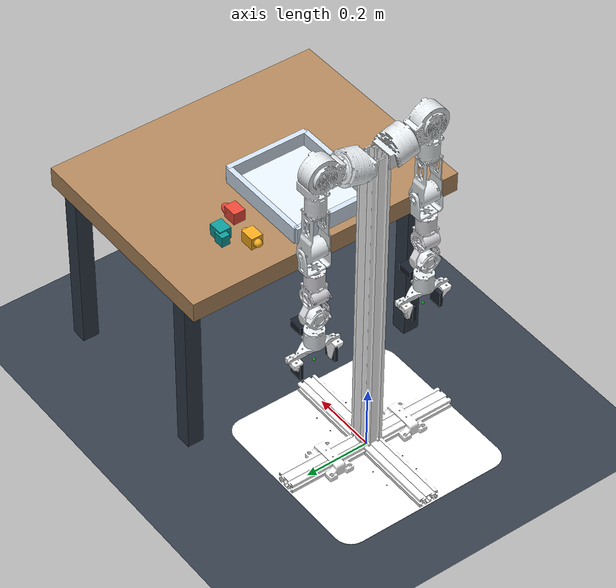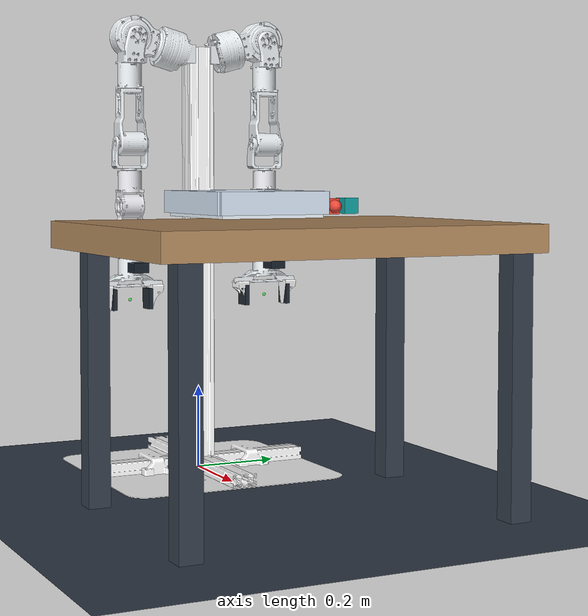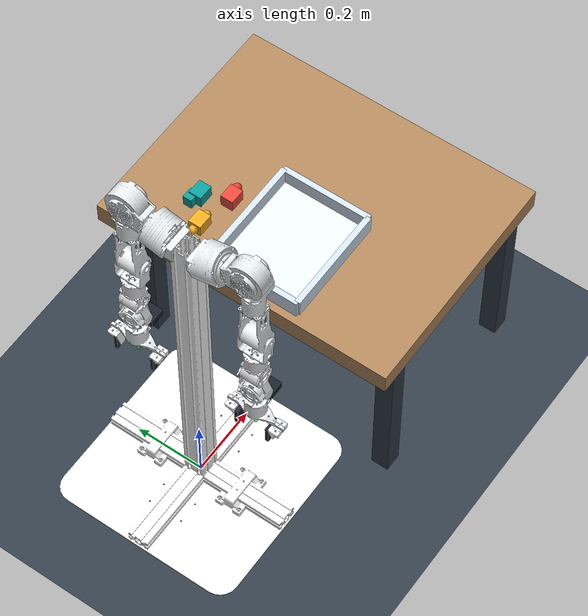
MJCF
<mujoco model="yunyi_v1_0">
  <compiler angle="radian" />
  <asset>
    <mesh name="base_link" content_type="model/stl" file="/home/ubuntu/gpt-jev/assets/robot/meshes/bessica_M1.3/base_link.STL" />
    <mesh name="l_base_link" content_type="model/stl" file="/home/ubuntu/gpt-jev/assets/robot/meshes/bessica_M1.3/l_base_link.STL" />
    <mesh name="l_link1" content_type="model/stl" file="/home/ubuntu/gpt-jev/assets/robot/meshes/bessica_M1.3/l_link1.STL" />
    <mesh name="l_link2" content_type="model/stl" file="/home/ubuntu/gpt-jev/assets/robot/meshes/bessica_M1.3/l_link2.STL" />
    <mesh name="l_link3" content_type="model/stl" file="/home/ubuntu/gpt-jev/assets/robot/meshes/bessica_M1.3/l_link3.STL" />
    <mesh name="l_link4" content_type="model/stl" file="/home/ubuntu/gpt-jev/assets/robot/meshes/bessica_M1.3/l_link4.STL" />
    <mesh name="l_link5" content_type="model/stl" file="/home/ubuntu/gpt-jev/assets/robot/meshes/bessica_M1.3/l_link5.STL" />
    <mesh name="l_link6" content_type="model/stl" file="/home/ubuntu/gpt-jev/assets/robot/meshes/bessica_M1.3/l_link6.STL" />
    <mesh name="l_link7" content_type="model/stl" file="/home/ubuntu/gpt-jev/assets/robot/meshes/bessica_M1.3/l_link7.STL" />
    <mesh name="l_tool_link1" content_type="model/stl" file="/home/ubuntu/gpt-jev/assets/robot/meshes/bessica_M1.3/l_tool_link1.STL" />
    <mesh name="l_tool_link2" content_type="model/stl" file="/home/ubuntu/gpt-jev/assets/robot/meshes/bessica_M1.3/l_tool_link2.STL" />
    <mesh name="r_base_link" content_type="model/stl" file="/home/ubuntu/gpt-jev/assets/robot/meshes/bessica_M1.3/r_base_link.STL" />
    <mesh name="r_link1" content_type="model/stl" file="/home/ubuntu/gpt-jev/assets/robot/meshes/bessica_M1.3/r_link1.STL" />
    <mesh name="r_link2" content_type="model/stl" file="/home/ubuntu/gpt-jev/assets/robot/meshes/bessica_M1.3/r_link2.STL" />
    <mesh name="r_link3" content_type="model/stl" file="/home/ubuntu/gpt-jev/assets/robot/meshes/bessica_M1.3/r_link3.STL" />
    <mesh name="r_link4" content_type="model/stl" file="/home/ubuntu/gpt-jev/assets/robot/meshes/bessica_M1.3/r_link4.STL" />
    <mesh name="r_link5" content_type="model/stl" file="/home/ubuntu/gpt-jev/assets/robot/meshes/bessica_M1.3/r_link5.STL" />
    <mesh name="r_link6" content_type="model/stl" file="/home/ubuntu/gpt-jev/assets/robot/meshes/bessica_M1.3/r_link6.STL" />
    <mesh name="r_link7" content_type="model/stl" file="/home/ubuntu/gpt-jev/assets/robot/meshes/bessica_M1.3/r_link7.STL" />
    <mesh name="r_tool_link1" content_type="model/stl" file="/home/ubuntu/gpt-jev/assets/robot/meshes/bessica_M1.3/r_tool_link1.STL" />
    <mesh name="r_tool_link2" content_type="model/stl" file="/home/ubuntu/gpt-jev/assets/robot/meshes/bessica_M1.3/r_tool_link2.STL" />
    <texture name="floor_tex" type="2d" builtin="checker" rgb1="0.18 0.22 0.27" rgb2="0.22 0.26 0.31" width="256" height="256" />
    <material name="floor_mat" texture="floor_tex" texrepeat="3 3" reflectance="0.1" />
  </asset>
  <worldbody>
    <body name="base_link">
      <inertial pos="0.000999999 -1.8355e-09 0.146364" mass="3.56107" diaginertia="0.133997 0.127853 0.0999783" />
      <geom type="mesh" contype="0" conaffinity="0" group="1" rgba="1 1 1 1" density="0" mesh="base_link" />
      <geom type="mesh" rgba="1 1 1 1" mesh="base_link" group="3" />
      <body name="l-base-link" pos="0.00105 0.0446731 1.01543" gravcomp="1">
        <inertial pos="-1.95622e-05 0.0255463 0.0061601" quat="0.560947 0.430489 0.560895 0.430598" mass="0.646746" diaginertia="0.000704038 0.000436175 0.000402983" />
        <geom type="mesh" contype="0" conaffinity="0" group="1" rgba="0.898039 0.917647 0.929412 1" density="0" mesh="l_base_link" />
        <geom type="mesh" rgba="0.898039 0.917647 0.929412 1" mesh="l_base_link" group="3" />
        <body name="l-link1" pos="0 0.059598 0.015969" gravcomp="1">
          <inertial pos="0.0022336 0.054301 0.0145263" quat="0.999444 -0.0333524 -0.000444295 0.000268664" mass="0.486098" diaginertia="0.000518892 0.000343244 0.000319394" />
          <joint name="l-joint1" range="-2.745 2.745" actuatorfrcrange="-40 40" axis="0 0.965926 0.258819" damping="4" armature=".04" />
          <geom type="mesh" contype="0" conaffinity="0" group="1" rgba="0.898039 0.917647 0.929412 1" density="0" mesh="l_link1" />
          <geom type="mesh" rgba="0.898039 0.917647 0.929412 1" mesh="l_link1" group="3" />
          <body name="l-link2" pos="-5e-05 0.06549 0.017548" gravcomp="1">
            <inertial pos="0.011293 0.00810561 -0.0751612" quat="0.632811 0.773794 0.000930292 0.0281703" mass="0.607836" diaginertia="0.000263322 0.000256792 0.000239564" />
            <joint name="l-joint2" range="-0.3489 2.2678" actuatorfrcrange="-40 40" axis="1 0 0" damping="4" armature=".04" />
            <geom type="mesh" contype="0" conaffinity="0" group="1" rgba="0.898039 0.917647 0.929412 1" density="0" mesh="l_link2" />
            <geom type="mesh" rgba="0.898039 0.917647 0.929412 1" mesh="l_link2" group="3" />
            <body name="l-link3" pos="0.0043414 0.008 -0.1195" gravcomp="1">
              <inertial pos="0.00593848 -0.00106127 -0.109907" quat="0.709918 0.0192142 0.0223492 0.703668" mass="0.579437" diaginertia="0.000466846 0.000421928 0.000196628" />
              <joint name="l-joint3" range="-2.5294 2.5294" actuatorfrcrange="-27 27" axis="0 0 -1" damping="4" armature=".04" />
              <geom type="mesh" contype="0" conaffinity="0" group="1" rgba="0.898039 0.917647 0.929412 1" density="0" mesh="l_link3" />
              <geom type="mesh" rgba="0.898039 0.917647 0.929412 1" mesh="l_link3" group="3" />
              <body name="l-link4" pos="0.0082 0 -0.13375" gravcomp="1">
                <inertial pos="-0.00610255 -0.00201934 -0.0331849" quat="0.719331 -0.0574666 -0.0692841 0.688811" mass="0.112953" diaginertia="5.77027e-05 5.23523e-05 1.89701e-05" />
                <joint name="l-joint4" range="-0.1744 2.2678" actuatorfrcrange="-27 27" axis="0 -1 0" damping="4" armature=".04" />
                <geom type="mesh" contype="0" conaffinity="0" group="1" rgba="0.898039 0.917647 0.929412 1" density="0" mesh="l_link4" />
                <geom type="mesh" rgba="0.898039 0.917647 0.929412 1" mesh="l_link4" group="3" />
                <body name="l-link5" pos="-0.0082 0.000875 -0.064" gravcomp="1">
                  <inertial pos="-4.08631e-05 -0.000608152 -0.0595684" quat="0.710092 -0.0055598 -0.00359269 0.704078" mass="0.70737" diaginertia="0.000324027 0.000281247 0.000235334" />
                  <joint name="l-joint5" range="-2.0933 2.0933" actuatorfrcrange="-7 7" damping="4" armature=".04" />
                  <geom type="mesh" contype="0" conaffinity="0" group="1" rgba="0.890196 0.890196 0.913725 1" density="0" mesh="l_link5" />
                  <geom type="mesh" rgba="0.890196 0.890196 0.913725 1" mesh="l_link5" group="3" />
                  <body name="l-link6" pos="0 0 -0.155" gravcomp="1">
                    <inertial pos="-0.00124021 0.00010203 2.17965e-07" quat="0.706451 0.707762 -5.50524e-05 -8.44295e-05" mass="0.320901" diaginertia="0.000138345 0.000106843 9.30209e-05" />
                    <joint name="l-joint6" range="-0.785 0.785" actuatorfrcrange="-7 7" axis="0 -1 0" damping="4" armature=".04" />
                    <geom type="mesh" contype="0" conaffinity="0" group="1" rgba="0.898039 0.917647 0.929412 1" density="0" mesh="l_link6" />
                    <geom type="mesh" rgba="0.898039 0.917647 0.929412 1" mesh="l_link6" group="3" />
                    <body name="l-link7" gravcomp="1">
                      <inertial pos="-0.000139431 1.25864e-07 -0.0729974" quat="0.499794 0.496998 -0.502976 0.500214" mass="0.393429" diaginertia="0.000215659 0.000183225 0.000109887" />
                      <joint name="l-joint7" range="-1.3956 1.3956" actuatorfrcrange="-7 7" axis="1 0 0" damping="4" armature=".04" />
                      <geom type="mesh" contype="0" conaffinity="0" group="1" rgba="0.898039 0.917647 0.929412 1" density="0" mesh="l_link7" />
                      <geom type="mesh" rgba="0.898039 0.917647 0.929412 1" mesh="l_link7" group="3" />
                      <body name="l-link8" pos="-0.0023828 -0.40777 -0.18025" gravcomp="1">
                        <inertial pos="0.000382814 0.346003 0.0449198" quat="0.695167 -0.129403 0.129412 0.695162" mass="0.029081" diaginertia="8.79158e-06 6.73189e-06 4.95048e-06" />
                        <joint name="l-joint8" type="slide" range="-0.05 0" actuatorfrcrange="-5 5" axis="0 -1 0" damping="2" armature=".005" />
                        <geom type="mesh" contype="0" conaffinity="0" group="1" rgba="1 1 1 1" density="0" mesh="l_tool_link1" />
                        <geom type="mesh" rgba="1 1 1 1" mesh="l_tool_link1" group="3" contype="0" conaffinity="0" />
                        <geom name="l_pad8" type="box" pos=".000383 0.352 .026" size=".021 .005 .025" mass="0" rgba=".12 .15 .19 1" friction="3 .05 .005" condim="4" solref=".006 1" />
                      </body>
                      <body name="l-link9" pos="-0.0023828 -0.30677 -0.18025" gravcomp="1">
                        <inertial pos="0.000382786 0.368539 0.0449198" quat="0.695167 0.129403 -0.129412 0.695162" mass="0.029081" diaginertia="8.79158e-06 6.73189e-06 4.95048e-06" />
                        <joint name="l-joint9" type="slide" range="0 0.05" actuatorfrcrange="-5 5" axis="0 -1 0" damping="2" armature=".005" />
                        <geom type="mesh" contype="0" conaffinity="0" group="1" rgba="1 1 1 1" density="0" mesh="l_tool_link2" />
                        <geom type="mesh" rgba="1 1 1 1" mesh="l_tool_link2" group="3" contype="0" conaffinity="0" />
                        <geom name="l_pad9" type="box" pos=".000383 0.3625 .026" size=".021 .005 .025" mass="0" rgba=".12 .15 .19 1" friction="3 .05 .005" condim="4" solref=".006 1" />
                      </body>
                      <body name="l-tool0" pos="-0.0023828 -0.35727 -0.18025" />
                      <site name="l_tcp" pos="-.002 0 -.155" size=".004" rgba="0 1 0 .6" />
                      <camera name="l_wrist" pos=".055 0 -.085" xyaxes="0 -1 0 1 0 0" fovy="72" />
                      <geom type="box" pos=".055 0 -.075" size=".022 .019 .012" rgba=".09 .12 .16 1" contype="0" conaffinity="0" mass="0" />
                    </body>
                  </body>
                </body>
              </body>
            </body>
          </body>
        </body>
      </body>
      <body name="r-base-link" pos="0.00105 -0.0446731 1.01543" gravcomp="1">
        <inertial pos="1.95622e-05 -0.0255463 0.0061601" quat="0.430489 0.560947 0.430598 0.560895" mass="0.646746" diaginertia="0.000704038 0.000436175 0.000402983" />
        <geom type="mesh" contype="0" conaffinity="0" group="1" rgba="0.898039 0.917647 0.929412 1" density="0" mesh="r_base_link" />
        <geom type="mesh" rgba="0.898039 0.917647 0.929412 1" mesh="r_base_link" group="3" />
        <body name="r-link1" pos="0 -0.0595976 0.0159691" gravcomp="1">
          <inertial pos="0.000680313 -0.0534825 0.0142445" quat="0.998692 -0.0510567 -0.00023774 0.00274407" mass="0.548482" diaginertia="0.000620368 0.000389286 0.00037541" />
          <joint name="r-joint1" range="-2.745 2.745" actuatorfrcrange="-40 40" axis="0 0.965926 -0.258819" damping="4" armature=".04" />
          <geom type="mesh" contype="0" conaffinity="0" group="1" rgba="0.898039 0.917647 0.929412 1" density="0" mesh="r_link1" />
          <geom type="mesh" rgba="0.898039 0.917647 0.929412 1" mesh="r_link1" group="3" />
          <body name="r-link2" pos="-5e-05 -0.0654898 0.0175479" gravcomp="1">
            <inertial pos="0.0109102 -0.00823945 -0.0751613" quat="0.76761 0.640236 -0.0294587 -0.00196632" mass="0.607836" diaginertia="0.000263328 0.00025666 0.000239689" />
            <joint name="r-joint2" range="-2.2678 0.3489" actuatorfrcrange="-40 40" axis="1 0 0" damping="4" armature=".04" />
            <geom type="mesh" contype="0" conaffinity="0" group="1" rgba="0.898039 0.917647 0.929412 1" density="0" mesh="r_link2" />
            <geom type="mesh" rgba="0.898039 0.917647 0.929412 1" mesh="r_link2" group="3" />
            <body name="r-link3" pos="0.0039586 -0.008 -0.1195" gravcomp="1">
              <inertial pos="0.00593606 0.00110447 -0.110341" quat="0.70379 0.0234987 0.0201855 0.709733" mass="0.578562" diaginertia="0.000462244 0.000417628 0.000196313" />
              <joint name="r-joint3" range="-2.5294 2.5294" actuatorfrcrange="-27 27" axis="0 0 -1" damping="4" armature=".04" />
              <geom type="mesh" contype="0" conaffinity="0" group="1" rgba="0.898039 0.917647 0.929412 1" density="0" mesh="r_link3" />
              <geom type="mesh" rgba="0.898039 0.917647 0.929412 1" mesh="r_link3" group="3" />
              <body name="r-link4" pos="0.0082 0 -0.134" gravcomp="1">
                <inertial pos="-0.00610255 0.00202089 -0.0331849" quat="0.68881 -0.0692844 -0.0574659 0.719331" mass="0.112953" diaginertia="5.77029e-05 5.23525e-05 1.89701e-05" />
                <joint name="r-joint4" range="-0.1744 2.2678" actuatorfrcrange="-27 27" axis="0 -1 0" damping="4" armature=".04" />
                <geom type="mesh" contype="0" conaffinity="0" group="1" rgba="0.898039 0.917647 0.929412 1" density="0" mesh="r_link4" />
                <geom type="mesh" rgba="0.898039 0.917647 0.929412 1" mesh="r_link4" group="3" />
                <body name="r-link5" pos="-0.0082 -0.000875 -0.064" gravcomp="1">
                  <inertial pos="-0.000158843 0.000493615 -0.0595602" quat="0.70678 -0.00304729 -0.00691443 0.707393" mass="0.707309" diaginertia="0.00032384 0.000281059 0.000235324" />
                  <joint name="r-joint5" range="-2.0933 2.0933" actuatorfrcrange="-7 7" damping="4" armature=".04" />
                  <geom type="mesh" contype="0" conaffinity="0" group="1" rgba="0.890196 0.890196 0.913725 1" density="0" mesh="r_link5" />
                  <geom type="mesh" rgba="0.890196 0.890196 0.913725 1" mesh="r_link5" group="3" />
                  <body name="r-link6" pos="0 0 -0.155" gravcomp="1">
                    <inertial pos="-0.00124384 0.000161939 1.39824e-06" quat="0.706611 0.707596 -0.00213685 -0.00218861" mass="0.320941" diaginertia="0.000138386 0.000106888 9.30237e-05" />
                    <joint name="r-joint6" range="-0.785 0.785" actuatorfrcrange="-7 7" axis="0 -1 0" damping="4" armature=".04" />
                    <geom type="mesh" contype="0" conaffinity="0" group="1" rgba="0.898039 0.917647 0.929412 1" density="0" mesh="r_link6" />
                    <geom type="mesh" rgba="0.898039 0.917647 0.929412 1" mesh="r_link6" group="3" />
                    <body name="r-link7" gravcomp="1">
                      <inertial pos="-0.000139431 1.25864e-07 -0.0729974" quat="0.499794 0.496998 -0.502976 0.500214" mass="0.393429" diaginertia="0.000215659 0.000183225 0.000109887" />
                      <joint name="r-joint7" range="-1.3956 1.3956" actuatorfrcrange="-7 7" axis="1 0 0" damping="4" armature=".04" />
                      <geom type="mesh" contype="0" conaffinity="0" group="1" rgba="0.898039 0.917647 0.929412 1" density="0" mesh="r_link7" />
                      <geom type="mesh" rgba="0.898039 0.917647 0.929412 1" mesh="r_link7" group="3" />
                      <body name="r-link8" pos="-0.0016172 0.30677 -0.17975" gravcomp="1">
                        <inertial pos="-0.000382786 -0.368539 0.0444198" quat="0.695167 -0.129403 0.129412 0.695162" mass="0.029081" diaginertia="8.79158e-06 6.73189e-06 4.95048e-06" />
                        <joint name="r-joint8" type="slide" range="-0.05 0" actuatorfrcrange="-5 5" axis="0 -1 0" damping="2" armature=".005" />
                        <geom type="mesh" contype="0" conaffinity="0" group="1" rgba="1 1 1 1" density="0" mesh="r_tool_link1" />
                        <geom type="mesh" rgba="1 1 1 1" mesh="r_tool_link1" group="3" contype="0" conaffinity="0" />
                        <geom name="r_pad8" type="box" pos=".000383 -0.352 .026" size=".021 .005 .025" mass="0" rgba=".12 .15 .19 1" friction="3 .05 .005" condim="4" solref=".006 1" />
                      </body>
                      <body name="r-link9" pos="-0.0016172 0.40777 -0.17975" gravcomp="1">
                        <inertial pos="-0.000382814 -0.346003 0.0444198" quat="0.695167 0.129403 -0.129412 0.695162" mass="0.029081" diaginertia="8.79158e-06 6.73189e-06 4.95048e-06" />
                        <joint name="r-joint9" type="slide" range="0 0.05" actuatorfrcrange="-5 5" axis="0 -1 0" damping="2" armature=".005" />
                        <geom type="mesh" contype="0" conaffinity="0" group="1" rgba="1 1 1 1" density="0" mesh="r_tool_link2" />
                        <geom type="mesh" rgba="1 1 1 1" mesh="r_tool_link2" group="3" contype="0" conaffinity="0" />
                        <geom name="r_pad9" type="box" pos=".000383 -0.3625 .026" size=".021 .005 .025" mass="0" rgba=".12 .15 .19 1" friction="3 .05 .005" condim="4" solref=".006 1" />
                      </body>
                      <body name="r-tool0" pos="-0.0016172 0.35727 -0.17975" />
                      <site name="r_tcp" pos="-.002 0 -.155" size=".004" rgba="0 1 0 .6" />
                      <camera name="r_wrist" pos=".055 0 -.085" xyaxes="0 -1 0 1 0 0" fovy="72" />
                      <geom type="box" pos=".055 0 -.075" size=".022 .019 .012" rgba=".09 .12 .16 1" contype="0" conaffinity="0" mass="0" />
                    </body>
                  </body>
                </body>
              </body>
            </body>
          </body>
        </body>
      </body>
    </body>
    <light pos="0.3 -0.3 2.8" dir="0 0 -1" diffuse="0.55 0.55 0.55" specular="0 0 0" castshadow="true" />
    <geom name="floor" type="plane" size="3 3 .05" material="floor_mat" />
    <geom name="table" type="box" pos="0.51 0 .59" size=".33 .43 .03" rgba=".69 .53 .36 1" friction="1 .01 .001" />
    <geom type="box" pos="0.3 -0.37 .28" size=".025 .025 .28" rgba=".19 .23 .28 1" />
    <geom type="box" pos="0.3 0.37 .28" size=".025 .025 .28" rgba=".19 .23 .28 1" />
    <geom type="box" pos="0.81 -0.37 .28" size=".025 .025 .28" rgba=".19 .23 .28 1" />
    <geom type="box" pos="0.81 0.37 .28" size=".025 .025 .28" rgba=".19 .23 .28 1" />
    <body name="tray" pos="0.35 -0.035 0.636">
      <geom name="tray_floor" type="box" size=".145 .12 .008" rgba=".9 .94 .97 1" friction="1 .01 .001" />
      <geom type="box" pos=".15 0 .025" size=".008 .128 .025" rgba=".82 .88 .94 1" />
      <geom type="box" pos="-.15 0 .025" size=".008 .128 .025" rgba=".82 .88 .94 1" />
      <geom type="box" pos="0 .125 .025" size=".15 .008 .025" rgba=".82 .88 .94 1" />
      <geom type="box" pos="0 -.125 .025" size=".15 .008 .025" rgba=".82 .88 .94 1" />
    </body>
    <body name="coral" pos="0.375 0.16 .65">
      <freejoint name="coral_free" />
      <geom name="coral_core" type="box" size=".022 .018 .018" mass=".035" rgba=".92 .28 .22 1" friction="2 .02 .002" condim="4" />
      <geom name="coral_lobe" type="ellipsoid" pos=".024 .006 0" size=".02 .014 .015" mass=".01" rgba=".92 .28 .22 1" friction="2 .02 .002" condim="4" />
    </body>
    <body name="teal" pos="0.34 0.23 .65">
      <freejoint name="teal_free" />
      <geom name="teal_core" type="box" size=".022 .018 .018" mass=".035" rgba=".05 .61 .61 1" friction="2 .02 .002" condim="4" />
      <geom name="teal_lobe" type="box" pos="-.023 .011 -.002" size=".016 .013 .016" mass=".01" rgba=".05 .61 .61 1" friction="2 .02 .002" condim="4" />
    </body>
    <body name="gold" pos="0.27 0.18 .65">
      <freejoint name="gold_free" />
      <geom name="gold_core" type="box" size=".022 .018 .018" mass=".035" rgba=".96 .67 .12 1" friction="2 .02 .002" condim="4" />
      <geom name="gold_lobe" type="capsule" fromto="-.026 0 0 .027 0 0" size=".012" mass=".01" rgba=".96 .67 .12 1" friction="2 .02 .002" condim="4" />
    </body>
    <camera name="center" pos="0.8 0 1.55" xyaxes="0.1351132047333135 0.990830168044299 -0.0 -0.8904614749281157 0.12142656476292486 0.43855894819136965" fovy="58" />
    <camera name="overview" pos="1.6 -1.55 1.5" xyaxes="0.7540815958863059 0.6567807448042019 -0.0 -0.23301755750980005 0.26753867714088153 0.934946990008457" fovy="48" />
  </worldbody>
  <option timestep="0.002" integrator="implicitfast" cone="elliptic" iterations="80" />
  <visual>
    <global offwidth="1280" offheight="960" />
    <quality shadowsize="2048" />
    <headlight ambient="0.2 0.2 0.2" diffuse="0.3 0.3 0.3" specular="0 0 0" />
  </visual>
  <actuator>
    <position name="l-joint1" joint="l-joint1" kp="1600" kv="70" ctrlrange="-2.745 2.745" forcerange="-100 100" />
    <position name="l-joint2" joint="l-joint2" kp="1600" kv="70" ctrlrange="-0.3489 2.2678" forcerange="-100 100" />
    <position name="l-joint3" joint="l-joint3" kp="1600" kv="70" ctrlrange="-2.5294 2.5294" forcerange="-100 100" />
    <position name="l-joint4" joint="l-joint4" kp="1600" kv="70" ctrlrange="-0.1744 2.2678" forcerange="-100 100" />
    <position name="l-joint5" joint="l-joint5" kp="1600" kv="70" ctrlrange="-2.0933 2.0933" forcerange="-100 100" />
    <position name="l-joint6" joint="l-joint6" kp="1600" kv="70" ctrlrange="-0.785 0.785" forcerange="-100 100" />
    <position name="l-joint7" joint="l-joint7" kp="1600" kv="70" ctrlrange="-1.3956 1.3956" forcerange="-100 100" />
    <position name="l-joint8" joint="l-joint8" kp="350" kv="8" ctrlrange="-0.05 0" forcerange="-15 15" />
    <position name="l-joint9" joint="l-joint9" kp="350" kv="8" ctrlrange="0 0.05" forcerange="-15 15" />
    <position name="r-joint1" joint="r-joint1" kp="1600" kv="70" ctrlrange="-2.745 2.745" forcerange="-100 100" />
    <position name="r-joint2" joint="r-joint2" kp="1600" kv="70" ctrlrange="-2.2678 0.3489" forcerange="-100 100" />
    <position name="r-joint3" joint="r-joint3" kp="1600" kv="70" ctrlrange="-2.5294 2.5294" forcerange="-100 100" />
    <position name="r-joint4" joint="r-joint4" kp="1600" kv="70" ctrlrange="-0.1744 2.2678" forcerange="-100 100" />
    <position name="r-joint5" joint="r-joint5" kp="1600" kv="70" ctrlrange="-2.0933 2.0933" forcerange="-100 100" />
    <position name="r-joint6" joint="r-joint6" kp="1600" kv="70" ctrlrange="-0.785 0.785" forcerange="-100 100" />
    <position name="r-joint7" joint="r-joint7" kp="1600" kv="70" ctrlrange="-1.3956 1.3956" forcerange="-100 100" />
    <position name="r-joint8" joint="r-joint8" kp="350" kv="8" ctrlrange="-0.05 0" forcerange="-15 15" />
    <position name="r-joint9" joint="r-joint9" kp="350" kv="8" ctrlrange="0 0.05" forcerange="-15 15" />
  </actuator>
  <contact>
    <exclude body1="l-base-link" body2="l-link1" />
    <exclude body1="l-link5" body2="l-link7" />
    <exclude body1="r-base-link" body2="r-link1" />
    <exclude body1="r-link5" body2="r-link7" />
  </contact>
</mujoco>
